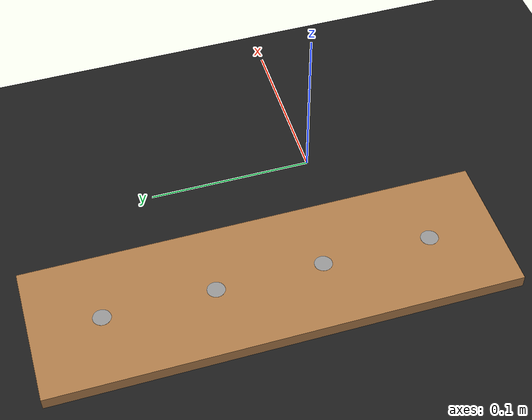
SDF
<sdf version="1.7">
 <world name="default">
  <light name="sun" type="directional">
   <pose>0 0 10 0 -0 0</pose>
   <diffuse>0.8 0.8 0.8 1</diffuse>
   <specular>0.2 0.2 0.2 1</specular>
   <attenuation>
    <range>1000</range>
    <constant>0.9</constant>
    <linear>0.01</linear>
    <quadratic>0.001</quadratic>
   </attenuation>
   <direction>-0.5 0.1 -0.9</direction>
   <spot><inner_angle>0</inner_angle><outer_angle>0</outer_angle><falloff>0</falloff></spot>
  </light>
  <physics type="ode">
   <real_time_update_rate>1000</real_time_update_rate>
   <max_step_size>0.001</max_step_size>
   <real_time_factor>1</real_time_factor>
   <ode>
    <solver>
     <type>quick</type>
     <iters>150</iters>
     <precon_iters>0</precon_iters>
     <sor>1.4</sor>
     <use_dynamic_moi_rescaling>1</use_dynamic_moi_rescaling>
    </solver>
    <constraints>
     <cfm>1e-05</cfm>
     <erp>0.2</erp>
     <contact_max_correcting_vel>2000</contact_max_correcting_vel>
     <contact_surface_layer>0.01</contact_surface_layer>
    </constraints>
   </ode>
  </physics>
  <scene><ambient>0.4 0.4 0.4 1</ambient><background>0.7 0.7 0.7 1</background><shadows>0</shadows></scene>
  <model name="ground2">
   <pose>0 0 -0.1 0 -0 0</pose>
   <static>1</static>
   <link name="ground">
    <collision name="ground_coll"><geometry><box><size>8 8 0.01</size></box></geometry></collision>
    <visual name="ground_vis">
     <geometry><box><size>10 10 0.01</size></box></geometry>
     <material>
      <script><uri>file://media/materials/scripts/gazebo.material</uri><name>Gazebo/FlatBlack</name></script>
     </material>
    </visual>
   </link>
  </model>
  <gravity>0 0 -9.8</gravity>
  <magnetic_field>6e-06 2.3e-05 -4.2e-05</magnetic_field>
  <atmosphere type="adiabatic"/>
  <spherical_coordinates>
   <surface_model>EARTH_WGS84</surface_model>
   <latitude_deg>0</latitude_deg>
   <longitude_deg>0</longitude_deg>
   <elevation>0</elevation>
   <heading_deg>0</heading_deg>
  </spherical_coordinates>
  <model name="wooden_board">
   <link name="base">
    <pose>0 0 0.00523 0 -0 0</pose>
    <inertial>
     <mass>0.2765</mass>
     <inertia>
      <ixx>0.0025148</ixx>
      <ixy>0</ixy>
      <ixz>0</ixz>
      <iyy>0.00024037</iyy>
      <iyz>0</iyz>
      <izz>0.00275013</izz>
     </inertia>
    </inertial>
    <collision name="collision">
     <geometry><box><size>0.1016 0.3302 0.01046</size></box></geometry>
     <surface>
      <contact>
       <poissons_ratio>0.347</poissons_ratio>
       <elastic_modulus>8.8e+09</elastic_modulus>
       <ode><kp>100000</kp><kd>100</kd><max_vel>100</max_vel><min_depth>0.001</min_depth></ode>
      </contact>
      <friction>
       <torsional>
        <coefficient>1</coefficient>
        <use_patch_radius>0</use_patch_radius>
        <surface_radius>0.01</surface_radius>
       </torsional>
      </friction>
     </surface>
    </collision>
    <visual name="visual">
     <geometry><box><size>0.1016 0.3302 0.01046</size></box></geometry>
     <material>
      <script><uri>file://media/materials/scripts/gazebo.material</uri><name>Gazebo/Wood</name></script>
     </material>
    </visual>
    <visual name="tee_nut_1">
     <pose>0 -0.116 0 0 -0 0</pose>
     <geometry><cylinder><radius>0.00635</radius><length>0.0105646</length></cylinder></geometry>
     <material>
      <script><uri>file://media/materials/scripts/gazebo.material</uri><name>Gazebo/Grey</name></script>
     </material>
    </visual>
    <visual name="tee_nut_2">
     <pose>0 -0.038 0 0 -0 0</pose>
     <geometry><cylinder><radius>0.00635</radius><length>0.0105646</length></cylinder></geometry>
     <material>
      <script><uri>file://media/materials/scripts/gazebo.material</uri><name>Gazebo/Grey</name></script>
     </material>
    </visual>
    <visual name="tee_nut_3">
     <pose>0 0.038 0 0 -0 0</pose>
     <geometry><cylinder><radius>0.00635</radius><length>0.0105646</length></cylinder></geometry>
     <material>
      <script><uri>file://media/materials/scripts/gazebo.material</uri><name>Gazebo/Grey</name></script>
     </material>
    </visual>
    <visual name="tee_nut_4">
     <pose>0 0.116 0 0 -0 0</pose>
     <geometry><cylinder><radius>0.00635</radius><length>0.0105646</length></cylinder></geometry>
     <material>
      <script><uri>file://media/materials/scripts/gazebo.material</uri><name>Gazebo/Grey</name></script>
     </material>
    </visual>
   </link>
   <pose>-0.018331 0.029822 -0.096007 0 -0 0</pose>
  </model>
 </world>
</sdf>
